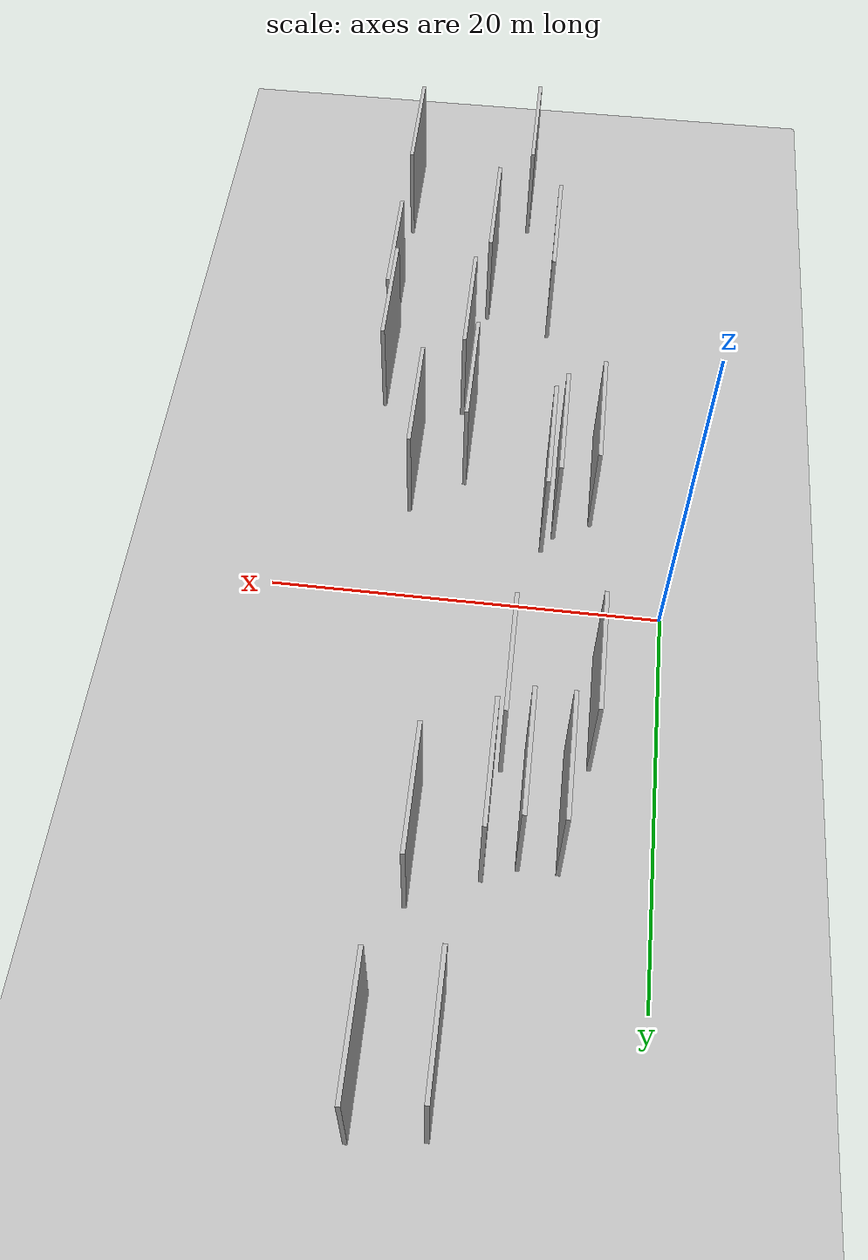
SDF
<?xml version="1.0" encoding="utf-8"?>

<sdf version="1.6">

   <world name="default">

      <gui fullscreen="0">

         <camera name="user_camera">

            <pose>-15 0 4.57585 0 0 0</pose>

            <view_controller>orbit</view_controller>

         </camera>

      </gui>

      <scene>

         <sky>

           <clouds>

             <speed>12</speed>

           </clouds>

         </sky>

         <ambient>0.4 0.4 0.4 1</ambient>

         <background>0.7 0.7 0.7 1</background>

         <shadows>1</shadows>

      </scene>

      <gravity>0 0 -9.8066</gravity>

      <magnetic_field>6e-06 2.3e-05 -4.2e-05</magnetic_field>

      <physics default="0" name="default_physics" type="ode">

         <ode>

            <solver>

               <type>quick</type>

               <iters>10</iters>

               <sor>1.0</sor>

               <use_dynamic_moi_rescaling>0</use_dynamic_moi_rescaling>

            </solver>

            <constraints>

               <cfm>0</cfm>

               <erp>0.2</erp>

               <contact_max_correcting_vel>100</contact_max_correcting_vel>

               <contact_surface_layer>0.001</contact_surface_layer>

            </constraints>

         </ode>

         <max_step_size>0.004</max_step_size>

         <real_time_factor>1</real_time_factor>

         <real_time_update_rate>250</real_time_update_rate>

      </physics>

      <light name="sun" type="directional">

         <cast_shadows>1</cast_shadows>

         <pose>0 0 10 0 0 0</pose>

         <diffuse>0.8 0.8 0.8 1</diffuse>

         <specular>0.2 0.2 0.2 1</specular>

         <attenuation>

            <range>1000</range>

            <constant>0.9</constant>

            <linear>0.01</linear>

            <quadratic>0.001</quadratic>

         </attenuation>

         <direction>-0.5 0.1 -0.9</direction>

      </light>

      <include>

         <name>ground_plane_1</name>

         <uri>model://HANNAS_ground_plane</uri>

         <pose>0 0 0  0 0 0</pose>

      </include>

      <include>

         <name>ground_plane_2</name>

         <uri>model://HANNAS_ground_plane</uri>

         <pose>100 0 0  0 0 0</pose>

      </include>

      <model name="HANNAS_wall_1">

         <static>1</static>

         <pose frame="">10.5334 -20.5578 2.5 0.000000 0.000000 1.570796</pose>

         <link name="link">

            <pose frame="">0 0 3.00 0 0 0</pose>

            <collision name="collision">

               <geometry>

                  <box>

                     <size>6.00 0.2 6.00</size>

                  </box>

               </geometry>

               <max_contacts>10</max_contacts>

               <surface>

                  <contact>

                     <ode/>

                  </contact>

                  <bounce/>

                  <friction>

                     <torsional>

                        <ode/>

                     </torsional>

                     <ode/>

                  </friction>

               </surface>

            </collision>

            <visual name="visual">

               <cast_shadows>0</cast_shadows>

               <geometry>

                  <box>

                     <size>6.00 0.2 6.00</size>

                  </box>

               </geometry>

               <material>

                  <script>

                     <uri>model://HANNAS_wall/materials/scripts</uri>

                     <uri>model://HANNAS_wall/materials/textures</uri>

                     <name>vrc/HANNAS_wall</name>

                  </script>

               </material>

            </visual>

            <self_collide>0</self_collide>

            <enable_wind>0</enable_wind>

            <kinematic>0</kinematic>

         </link>

      </model>

      <model name="HANNAS_wall_2">

         <static>1</static>

         <pose frame="">7.7488 12.8245 2.5 0.000000 0.000000 1.570796</pose>

         <link name="link">

            <pose frame="">0 0 3.00 0 0 0</pose>

            <collision name="collision">

               <geometry>

                  <box>

                     <size>6.00 0.2 6.00</size>

                  </box>

               </geometry>

               <max_contacts>10</max_contacts>

               <surface>

                  <contact>

                     <ode/>

                  </contact>

                  <bounce/>

                  <friction>

                     <torsional>

                        <ode/>

                     </torsional>

                     <ode/>

                  </friction>

               </surface>

            </collision>

            <visual name="visual">

               <cast_shadows>0</cast_shadows>

               <geometry>

                  <box>

                     <size>6.00 0.2 6.00</size>

                  </box>

               </geometry>

               <material>

                  <script>

                     <uri>model://HANNAS_wall/materials/scripts</uri>

                     <uri>model://HANNAS_wall/materials/textures</uri>

                     <name>vrc/HANNAS_wall</name>

                  </script>

               </material>

            </visual>

            <self_collide>0</self_collide>

            <enable_wind>0</enable_wind>

            <kinematic>0</kinematic>

         </link>

      </model>

      <model name="HANNAS_wall_3">

         <static>1</static>

         <pose frame="">8.8190 23.7844 2.5 0.000000 0.000000 1.570796</pose>

         <link name="link">

            <pose frame="">0 0 3.00 0 0 0</pose>

            <collision name="collision">

               <geometry>

                  <box>

                     <size>6.00 0.2 6.00</size>

                  </box>

               </geometry>

               <max_contacts>10</max_contacts>

               <surface>

                  <contact>

                     <ode/>

                  </contact>

                  <bounce/>

                  <friction>

                     <torsional>

                        <ode/>

                     </torsional>

                     <ode/>

                  </friction>

               </surface>

            </collision>

            <visual name="visual">

               <cast_shadows>0</cast_shadows>

               <geometry>

                  <box>

                     <size>6.00 0.2 6.00</size>

                  </box>

               </geometry>

               <material>

                  <script>

                     <uri>model://HANNAS_wall/materials/scripts</uri>

                     <uri>model://HANNAS_wall/materials/textures</uri>

                     <name>vrc/HANNAS_wall</name>

                  </script>

               </material>

            </visual>

            <self_collide>0</self_collide>

            <enable_wind>0</enable_wind>

            <kinematic>0</kinematic>

         </link>

      </model>

      <model name="HANNAS_wall_4">

         <static>1</static>

         <pose frame="">3.9841 -6.7538 2.5 0.000000 0.000000 1.570796</pose>

         <link name="link">

            <pose frame="">0 0 3.00 0 0 0</pose>

            <collision name="collision">

               <geometry>

                  <box>

                     <size>6.00 0.2 6.00</size>

                  </box>

               </geometry>

               <max_contacts>10</max_contacts>

               <surface>

                  <contact>

                     <ode/>

                  </contact>

                  <bounce/>

                  <friction>

                     <torsional>

                        <ode/>

                     </torsional>

                     <ode/>

                  </friction>

               </surface>

            </collision>

            <visual name="visual">

               <cast_shadows>0</cast_shadows>

               <geometry>

                  <box>

                     <size>6.00 0.2 6.00</size>

                  </box>

               </geometry>

               <material>

                  <script>

                     <uri>model://HANNAS_wall/materials/scripts</uri>

                     <uri>model://HANNAS_wall/materials/textures</uri>

                     <name>vrc/HANNAS_wall</name>

                  </script>

               </material>

            </visual>

            <self_collide>0</self_collide>

            <enable_wind>0</enable_wind>

            <kinematic>0</kinematic>

         </link>

      </model>

      <model name="HANNAS_wall_5">

         <static>1</static>

         <pose frame="">10.9122 14.3691 2.5 0.000000 0.000000 1.570796</pose>

         <link name="link">

            <pose frame="">0 0 3.00 0 0 0</pose>

            <collision name="collision">

               <geometry>

                  <box>

                     <size>6.00 0.2 6.00</size>

                  </box>

               </geometry>

               <max_contacts>10</max_contacts>

               <surface>

                  <contact>

                     <ode/>

                  </contact>

                  <bounce/>

                  <friction>

                     <torsional>

                        <ode/>

                     </torsional>

                     <ode/>

                  </friction>

               </surface>

            </collision>

            <visual name="visual">

               <cast_shadows>0</cast_shadows>

               <geometry>

                  <box>

                     <size>6.00 0.2 6.00</size>

                  </box>

               </geometry>

               <material>

                  <script>

                     <uri>model://HANNAS_wall/materials/scripts</uri>

                     <uri>model://HANNAS_wall/materials/textures</uri>

                     <name>vrc/HANNAS_wall</name>

                  </script>

               </material>

            </visual>

            <self_collide>0</self_collide>

            <enable_wind>0</enable_wind>

            <kinematic>0</kinematic>

         </link>

      </model>

      <model name="HANNAS_wall_6">

         <static>1</static>

         <pose frame="">13.2713 -6.6503 2.5 0.000000 0.000000 1.570796</pose>

         <link name="link">

            <pose frame="">0 0 3.00 0 0 0</pose>

            <collision name="collision">

               <geometry>

                  <box>

                     <size>6.00 0.2 6.00</size>

                  </box>

               </geometry>

               <max_contacts>10</max_contacts>

               <surface>

                  <contact>

                     <ode/>

                  </contact>

                  <bounce/>

                  <friction>

                     <torsional>

                        <ode/>

                     </torsional>

                     <ode/>

                  </friction>

               </surface>

            </collision>

            <visual name="visual">

               <cast_shadows>0</cast_shadows>

               <geometry>

                  <box>

                     <size>6.00 0.2 6.00</size>

                  </box>

               </geometry>

               <material>

                  <script>

                     <uri>model://HANNAS_wall/materials/scripts</uri>

                     <uri>model://HANNAS_wall/materials/textures</uri>

                     <name>vrc/HANNAS_wall</name>

                  </script>

               </material>

            </visual>

            <self_collide>0</self_collide>

            <enable_wind>0</enable_wind>

            <kinematic>0</kinematic>

         </link>

      </model>

      <model name="HANNAS_wall_7">

         <static>1</static>

         <pose frame="">15.6652 -17.1908 2.5 0.000000 0.000000 1.570796</pose>

         <link name="link">

            <pose frame="">0 0 3.00 0 0 0</pose>

            <collision name="collision">

               <geometry>

                  <box>

                     <size>6.00 0.2 6.00</size>

                  </box>

               </geometry>

               <max_contacts>10</max_contacts>

               <surface>

                  <contact>

                     <ode/>

                  </contact>

                  <bounce/>

                  <friction>

                     <torsional>

                        <ode/>

                     </torsional>

                     <ode/>

                  </friction>

               </surface>

            </collision>

            <visual name="visual">

               <cast_shadows>0</cast_shadows>

               <geometry>

                  <box>

                     <size>6.00 0.2 6.00</size>

                  </box>

               </geometry>

               <material>

                  <script>

                     <uri>model://HANNAS_wall/materials/scripts</uri>

                     <uri>model://HANNAS_wall/materials/textures</uri>

                     <name>vrc/HANNAS_wall</name>

                  </script>

               </material>

            </visual>

            <self_collide>0</self_collide>

            <enable_wind>0</enable_wind>

            <kinematic>0</kinematic>

         </link>

      </model>

      <model name="HANNAS_wall_8">

         <static>1</static>

         <pose frame="">15.4649 -13.5422 2.5 0.000000 0.000000 1.570796</pose>

         <link name="link">

            <pose frame="">0 0 3.00 0 0 0</pose>

            <collision name="collision">

               <geometry>

                  <box>

                     <size>6.00 0.2 6.00</size>

                  </box>

               </geometry>

               <max_contacts>10</max_contacts>

               <surface>

                  <contact>

                     <ode/>

                  </contact>

                  <bounce/>

                  <friction>

                     <torsional>

                        <ode/>

                     </torsional>

                     <ode/>

                  </friction>

               </surface>

            </collision>

            <visual name="visual">

               <cast_shadows>0</cast_shadows>

               <geometry>

                  <box>

                     <size>6.00 0.2 6.00</size>

                  </box>

               </geometry>

               <material>

                  <script>

                     <uri>model://HANNAS_wall/materials/scripts</uri>

                     <uri>model://HANNAS_wall/materials/textures</uri>

                     <name>vrc/HANNAS_wall</name>

                  </script>

               </material>

            </visual>

            <self_collide>0</self_collide>

            <enable_wind>0</enable_wind>

            <kinematic>0</kinematic>

         </link>

      </model>

      <model name="HANNAS_wall_9">

         <static>1</static>

         <pose frame="">8.7912 -27.8164 2.5 0.000000 0.000000 1.570796</pose>

         <link name="link">

            <pose frame="">0 0 3.00 0 0 0</pose>

            <collision name="collision">

               <geometry>

                  <box>

                     <size>6.00 0.2 6.00</size>

                  </box>

               </geometry>

               <max_contacts>10</max_contacts>

               <surface>

                  <contact>

                     <ode/>

                  </contact>

                  <bounce/>

                  <friction>

                     <torsional>

                        <ode/>

                     </torsional>

                     <ode/>

                  </friction>

               </surface>

            </collision>

            <visual name="visual">

               <cast_shadows>0</cast_shadows>

               <geometry>

                  <box>

                     <size>6.00 0.2 6.00</size>

                  </box>

               </geometry>

               <material>

                  <script>

                     <uri>model://HANNAS_wall/materials/scripts</uri>

                     <uri>model://HANNAS_wall/materials/textures</uri>

                     <name>vrc/HANNAS_wall</name>

                  </script>

               </material>

            </visual>

            <self_collide>0</self_collide>

            <enable_wind>0</enable_wind>

            <kinematic>0</kinematic>

         </link>

      </model>

      <model name="HANNAS_wall_10">

         <static>1</static>

         <pose frame="">10.6417 -8.6796 2.5 0.000000 0.000000 1.570796</pose>

         <link name="link">

            <pose frame="">0 0 3.00 0 0 0</pose>

            <collision name="collision">

               <geometry>

                  <box>

                     <size>6.00 0.2 6.00</size>

                  </box>

               </geometry>

               <max_contacts>10</max_contacts>

               <surface>

                  <contact>

                     <ode/>

                  </contact>

                  <bounce/>

                  <friction>

                     <torsional>

                        <ode/>

                     </torsional>

                     <ode/>

                  </friction>

               </surface>

            </collision>

            <visual name="visual">

               <cast_shadows>0</cast_shadows>

               <geometry>

                  <box>

                     <size>6.00 0.2 6.00</size>

                  </box>

               </geometry>

               <material>

                  <script>

                     <uri>model://HANNAS_wall/materials/scripts</uri>

                     <uri>model://HANNAS_wall/materials/textures</uri>

                     <name>vrc/HANNAS_wall</name>

                  </script>

               </material>

            </visual>

            <self_collide>0</self_collide>

            <enable_wind>0</enable_wind>

            <kinematic>0</kinematic>

         </link>

      </model>

      <model name="HANNAS_wall_11">

         <static>1</static>

         <pose frame="">12.0382 24.2024 2.5 0.000000 0.000000 1.570796</pose>

         <link name="link">

            <pose frame="">0 0 3.00 0 0 0</pose>

            <collision name="collision">

               <geometry>

                  <box>

                     <size>6.00 0.2 6.00</size>

                  </box>

               </geometry>

               <max_contacts>10</max_contacts>

               <surface>

                  <contact>

                     <ode/>

                  </contact>

                  <bounce/>

                  <friction>

                     <torsional>

                        <ode/>

                     </torsional>

                     <ode/>

                  </friction>

               </surface>

            </collision>

            <visual name="visual">

               <cast_shadows>0</cast_shadows>

               <geometry>

                  <box>

                     <size>6.00 0.2 6.00</size>

                  </box>

               </geometry>

               <material>

                  <script>

                     <uri>model://HANNAS_wall/materials/scripts</uri>

                     <uri>model://HANNAS_wall/materials/textures</uri>

                     <name>vrc/HANNAS_wall</name>

                  </script>

               </material>

            </visual>

            <self_collide>0</self_collide>

            <enable_wind>0</enable_wind>

            <kinematic>0</kinematic>

         </link>

      </model>

      <model name="HANNAS_wall_12">

         <static>1</static>

         <pose frame="">11.2279 -13.4062 2.5 0.000000 0.000000 1.570796</pose>

         <link name="link">

            <pose frame="">0 0 3.00 0 0 0</pose>

            <collision name="collision">

               <geometry>

                  <box>

                     <size>6.00 0.2 6.00</size>

                  </box>

               </geometry>

               <max_contacts>10</max_contacts>

               <surface>

                  <contact>

                     <ode/>

                  </contact>

                  <bounce/>

                  <friction>

                     <torsional>

                        <ode/>

                     </torsional>

                     <ode/>

                  </friction>

               </surface>

            </collision>

            <visual name="visual">

               <cast_shadows>0</cast_shadows>

               <geometry>

                  <box>

                     <size>6.00 0.2 6.00</size>

                  </box>

               </geometry>

               <material>

                  <script>

                     <uri>model://HANNAS_wall/materials/scripts</uri>

                     <uri>model://HANNAS_wall/materials/textures</uri>

                     <name>vrc/HANNAS_wall</name>

                  </script>

               </material>

            </visual>

            <self_collide>0</self_collide>

            <enable_wind>0</enable_wind>

            <kinematic>0</kinematic>

         </link>

      </model>

      <model name="HANNAS_wall_13">

         <static>1</static>

         <pose frame="">15.5992 -27.0342 2.5 0.000000 0.000000 1.570796</pose>

         <link name="link">

            <pose frame="">0 0 3.00 0 0 0</pose>

            <collision name="collision">

               <geometry>

                  <box>

                     <size>6.00 0.2 6.00</size>

                  </box>

               </geometry>

               <max_contacts>10</max_contacts>

               <surface>

                  <contact>

                     <ode/>

                  </contact>

                  <bounce/>

                  <friction>

                     <torsional>

                        <ode/>

                     </torsional>

                     <ode/>

                  </friction>

               </surface>

            </collision>

            <visual name="visual">

               <cast_shadows>0</cast_shadows>

               <geometry>

                  <box>

                     <size>6.00 0.2 6.00</size>

                  </box>

               </geometry>

               <material>

                  <script>

                     <uri>model://HANNAS_wall/materials/scripts</uri>

                     <uri>model://HANNAS_wall/materials/textures</uri>

                     <name>vrc/HANNAS_wall</name>

                  </script>

               </material>

            </visual>

            <self_collide>0</self_collide>

            <enable_wind>0</enable_wind>

            <kinematic>0</kinematic>

         </link>

      </model>

      <model name="HANNAS_wall_14">

         <static>1</static>

         <pose frame="">6.1909 12.1441 2.5 0.000000 0.000000 1.570796</pose>

         <link name="link">

            <pose frame="">0 0 3.00 0 0 0</pose>

            <collision name="collision">

               <geometry>

                  <box>

                     <size>6.00 0.2 6.00</size>

                  </box>

               </geometry>

               <max_contacts>10</max_contacts>

               <surface>

                  <contact>

                     <ode/>

                  </contact>

                  <bounce/>

                  <friction>

                     <torsional>

                        <ode/>

                     </torsional>

                     <ode/>

                  </friction>

               </surface>

            </collision>

            <visual name="visual">

               <cast_shadows>0</cast_shadows>

               <geometry>

                  <box>

                     <size>6.00 0.2 6.00</size>

                  </box>

               </geometry>

               <material>

                  <script>

                     <uri>model://HANNAS_wall/materials/scripts</uri>

                     <uri>model://HANNAS_wall/materials/textures</uri>

                     <name>vrc/HANNAS_wall</name>

                  </script>

               </material>

            </visual>

            <self_collide>0</self_collide>

            <enable_wind>0</enable_wind>

            <kinematic>0</kinematic>

         </link>

      </model>

      <model name="HANNAS_wall_15">

         <static>1</static>

         <pose frame="">4.3948 12.1530 2.5 0.000000 0.000000 1.570796</pose>

         <link name="link">

            <pose frame="">0 0 3.00 0 0 0</pose>

            <collision name="collision">

               <geometry>

                  <box>

                     <size>6.00 0.2 6.00</size>

                  </box>

               </geometry>

               <max_contacts>10</max_contacts>

               <surface>

                  <contact>

                     <ode/>

                  </contact>

                  <bounce/>

                  <friction>

                     <torsional>

                        <ode/>

                     </torsional>

                     <ode/>

                  </friction>

               </surface>

            </collision>

            <visual name="visual">

               <cast_shadows>0</cast_shadows>

               <geometry>

                  <box>

                     <size>6.00 0.2 6.00</size>

                  </box>

               </geometry>

               <material>

                  <script>

                     <uri>model://HANNAS_wall/materials/scripts</uri>

                     <uri>model://HANNAS_wall/materials/textures</uri>

                     <name>vrc/HANNAS_wall</name>

                  </script>

               </material>

            </visual>

            <self_collide>0</self_collide>

            <enable_wind>0</enable_wind>

            <kinematic>0</kinematic>

         </link>

      </model>

      <model name="HANNAS_wall_16">

         <static>1</static>

         <pose frame="">6.3541 -4.8810 2.5 0.000000 0.000000 1.570796</pose>

         <link name="link">

            <pose frame="">0 0 3.00 0 0 0</pose>

            <collision name="collision">

               <geometry>

                  <box>

                     <size>6.00 0.2 6.00</size>

                  </box>

               </geometry>

               <max_contacts>10</max_contacts>

               <surface>

                  <contact>

                     <ode/>

                  </contact>

                  <bounce/>

                  <friction>

                     <torsional>

                        <ode/>

                     </torsional>

                     <ode/>

                  </friction>

               </surface>

            </collision>

            <visual name="visual">

               <cast_shadows>0</cast_shadows>

               <geometry>

                  <box>

                     <size>6.00 0.2 6.00</size>

                  </box>

               </geometry>

               <material>

                  <script>

                     <uri>model://HANNAS_wall/materials/scripts</uri>

                     <uri>model://HANNAS_wall/materials/textures</uri>

                     <name>vrc/HANNAS_wall</name>

                  </script>

               </material>

            </visual>

            <self_collide>0</self_collide>

            <enable_wind>0</enable_wind>

            <kinematic>0</kinematic>

         </link>

      </model>

      <model name="HANNAS_wall_17">

         <static>1</static>

         <pose frame="">7.0522 -19.5094 2.5 0.000000 0.000000 1.570796</pose>

         <link name="link">

            <pose frame="">0 0 3.00 0 0 0</pose>

            <collision name="collision">

               <geometry>

                  <box>

                     <size>6.00 0.2 6.00</size>

                  </box>

               </geometry>

               <max_contacts>10</max_contacts>

               <surface>

                  <contact>

                     <ode/>

                  </contact>

                  <bounce/>

                  <friction>

                     <torsional>

                        <ode/>

                     </torsional>

                     <ode/>

                  </friction>

               </surface>

            </collision>

            <visual name="visual">

               <cast_shadows>0</cast_shadows>

               <geometry>

                  <box>

                     <size>6.00 0.2 6.00</size>

                  </box>

               </geometry>

               <material>

                  <script>

                     <uri>model://HANNAS_wall/materials/scripts</uri>

                     <uri>model://HANNAS_wall/materials/textures</uri>

                     <name>vrc/HANNAS_wall</name>

                  </script>

               </material>

            </visual>

            <self_collide>0</self_collide>

            <enable_wind>0</enable_wind>

            <kinematic>0</kinematic>

         </link>

      </model>

      <model name="HANNAS_wall_18">

         <static>1</static>

         <pose frame="">7.3372 7.4726 2.5 0.000000 0.000000 1.570796</pose>

         <link name="link">

            <pose frame="">0 0 3.00 0 0 0</pose>

            <collision name="collision">

               <geometry>

                  <box>

                     <size>6.00 0.2 6.00</size>

                  </box>

               </geometry>

               <max_contacts>10</max_contacts>

               <surface>

                  <contact>

                     <ode/>

                  </contact>

                  <bounce/>

                  <friction>

                     <torsional>

                        <ode/>

                     </torsional>

                     <ode/>

                  </friction>

               </surface>

            </collision>

            <visual name="visual">

               <cast_shadows>0</cast_shadows>

               <geometry>

                  <box>

                     <size>6.00 0.2 6.00</size>

                  </box>

               </geometry>

               <material>

                  <script>

                     <uri>model://HANNAS_wall/materials/scripts</uri>

                     <uri>model://HANNAS_wall/materials/textures</uri>

                     <name>vrc/HANNAS_wall</name>

                  </script>

               </material>

            </visual>

            <self_collide>0</self_collide>

            <enable_wind>0</enable_wind>

            <kinematic>0</kinematic>

         </link>

      </model>

      <model name="HANNAS_wall_19">

         <static>1</static>

         <pose frame="">3.3163 6.9529 2.5 0.000000 0.000000 1.570796</pose>

         <link name="link">

            <pose frame="">0 0 3.00 0 0 0</pose>

            <collision name="collision">

               <geometry>

                  <box>

                     <size>6.00 0.2 6.00</size>

                  </box>

               </geometry>

               <max_contacts>10</max_contacts>

               <surface>

                  <contact>

                     <ode/>

                  </contact>

                  <bounce/>

                  <friction>

                     <torsional>

                        <ode/>

                     </torsional>

                     <ode/>

                  </friction>

               </surface>

            </collision>

            <visual name="visual">

               <cast_shadows>0</cast_shadows>

               <geometry>

                  <box>

                     <size>6.00 0.2 6.00</size>

                  </box>

               </geometry>

               <material>

                  <script>

                     <uri>model://HANNAS_wall/materials/scripts</uri>

                     <uri>model://HANNAS_wall/materials/textures</uri>

                     <name>vrc/HANNAS_wall</name>

                  </script>

               </material>

            </visual>

            <self_collide>0</self_collide>

            <enable_wind>0</enable_wind>

            <kinematic>0</kinematic>

         </link>

      </model>

      <model name="HANNAS_wall_20">

         <static>1</static>

         <pose frame="">5.8026 -5.7648 2.5 0.000000 0.000000 1.570796</pose>

         <link name="link">

            <pose frame="">0 0 3.00 0 0 0</pose>

            <collision name="collision">

               <geometry>

                  <box>

                     <size>6.00 0.2 6.00</size>

                  </box>

               </geometry>

               <max_contacts>10</max_contacts>

               <surface>

                  <contact>

                     <ode/>

                  </contact>

                  <bounce/>

                  <friction>

                     <torsional>

                        <ode/>

                     </torsional>

                     <ode/>

                  </friction>

               </surface>

            </collision>

            <visual name="visual">

               <cast_shadows>0</cast_shadows>

               <geometry>

                  <box>

                     <size>6.00 0.2 6.00</size>

                  </box>

               </geometry>

               <material>

                  <script>

                     <uri>model://HANNAS_wall/materials/scripts</uri>

                     <uri>model://HANNAS_wall/materials/textures</uri>

                     <name>vrc/HANNAS_wall</name>

                  </script>

               </material>

            </visual>

            <self_collide>0</self_collide>

            <enable_wind>0</enable_wind>

            <kinematic>0</kinematic>

         </link>

      </model>

   </world>

</sdf>

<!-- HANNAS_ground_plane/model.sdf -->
<sdf version="1.4">
<model name="HANNAS_ground_plane">
  <static>true</static>
    <link name="link">
      <collision name="collision">
        <geometry>
          <plane>
            <normal>0 0 1</normal>
            <size>1000 1000</size>
          </plane>
        </geometry>
        <surface>
          <friction>
            <ode>
              <mu>100</mu>
              <mu2>50</mu2>
            </ode>
          </friction>
        </surface>
      </collision>
      <visual name="visual">
        <cast_shadows>false</cast_shadows>
        <geometry>
          <plane>
            <normal>0 0 1</normal>
            <size>1000 1000</size>
          </plane>
        </geometry>
        <material>
          <script>
            <uri>model://HANNAS_ground_plane/materials/scripts/HANNAS_ground_plane.material</uri>
	    <uri>model://HANNAS_ground_plane/materials/textures</uri>
            <name>HANNASGroundPlane/Image</name>
          </script>
        </material>
      </visual>
    </link>
  </model>
</sdf>
